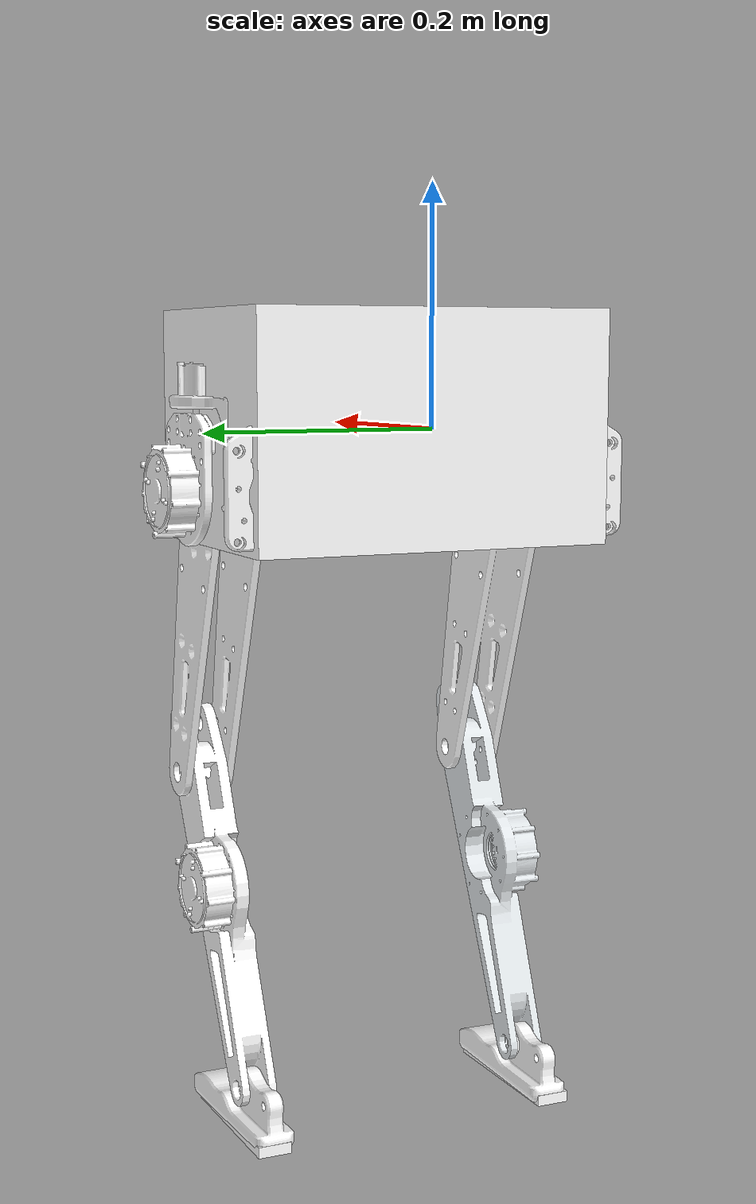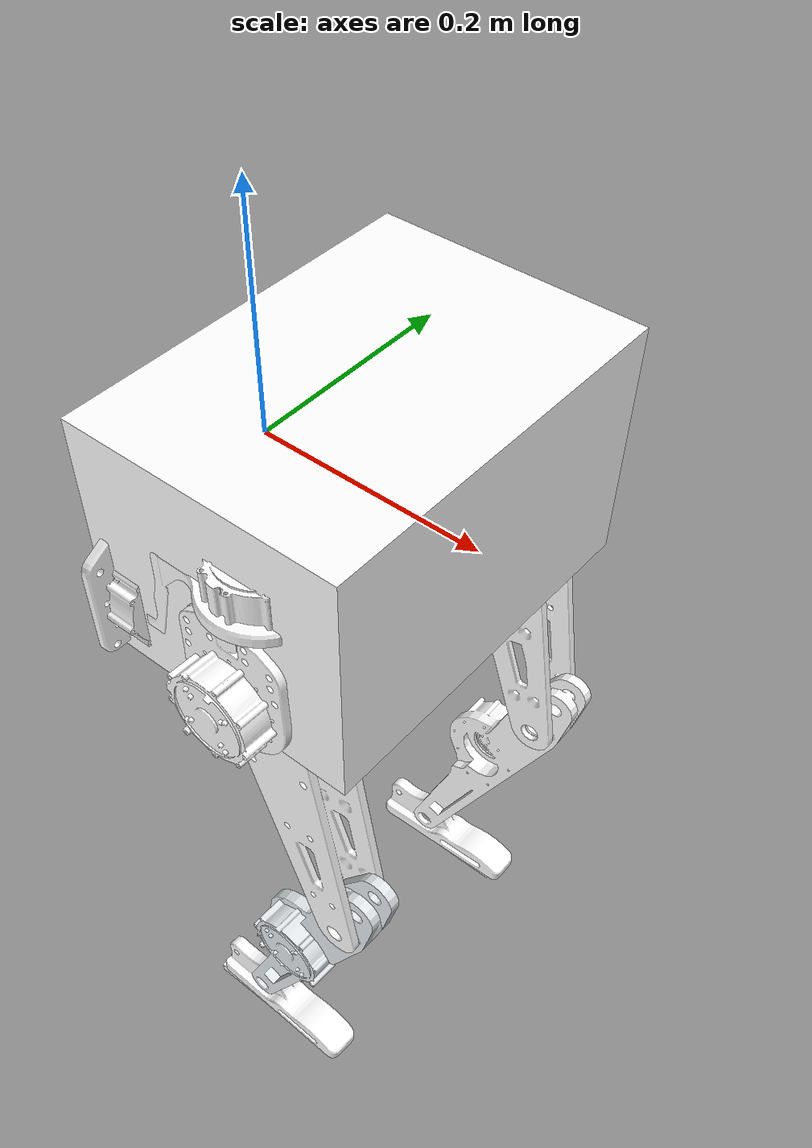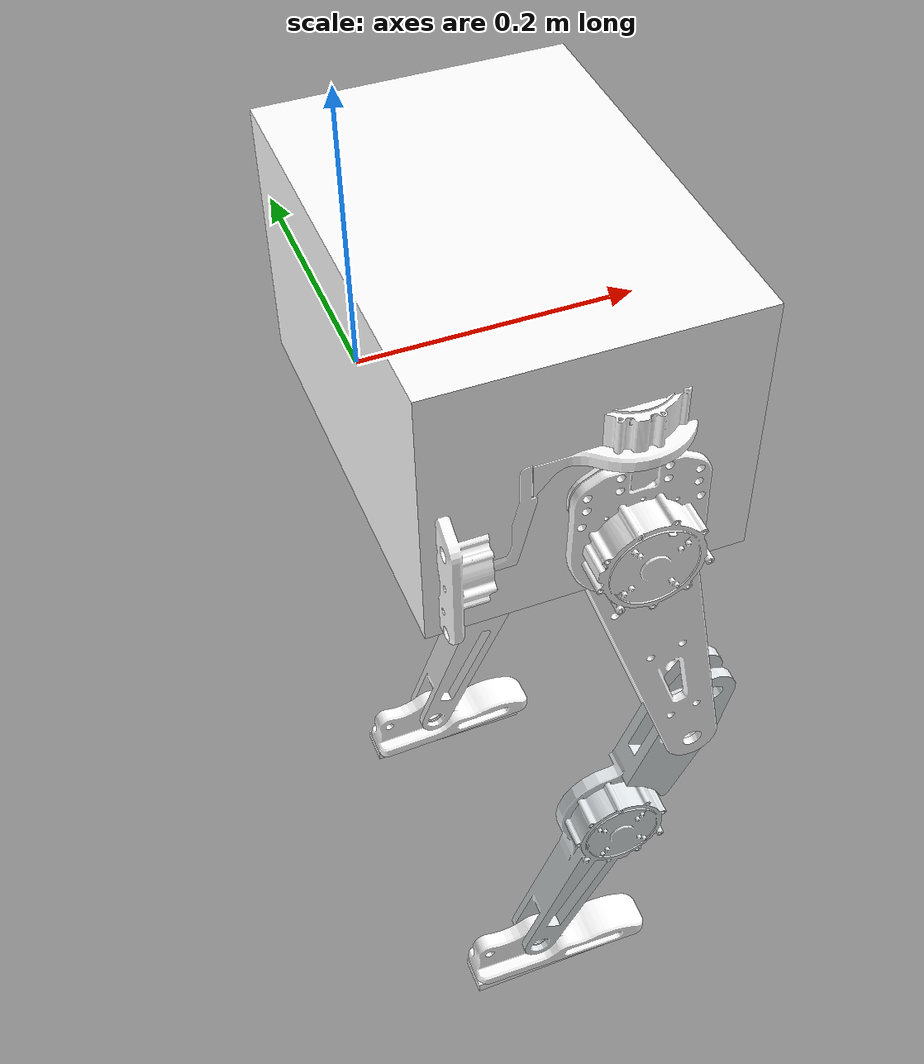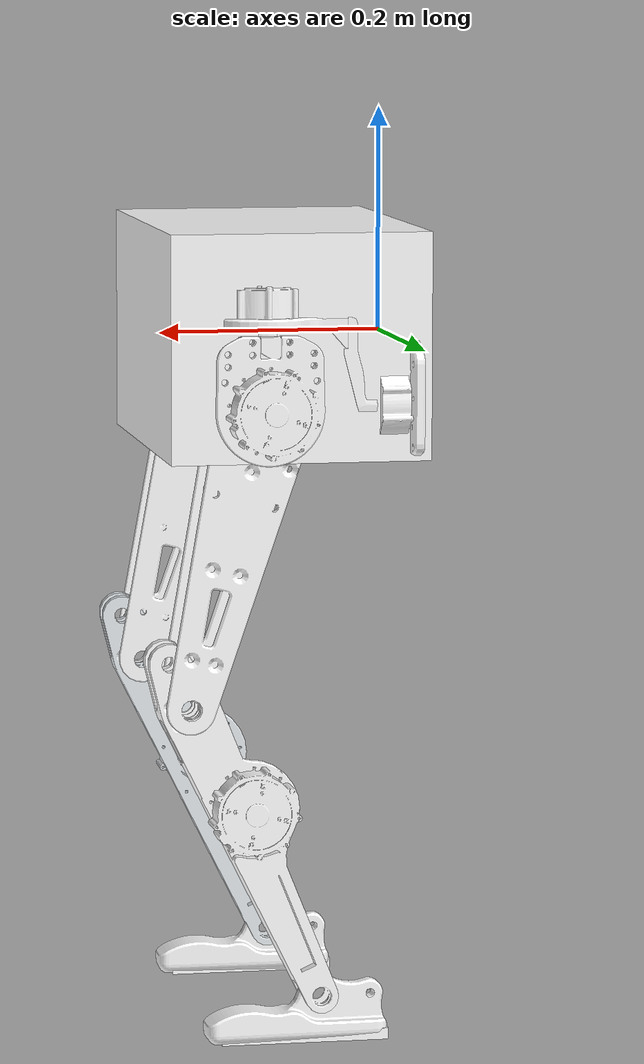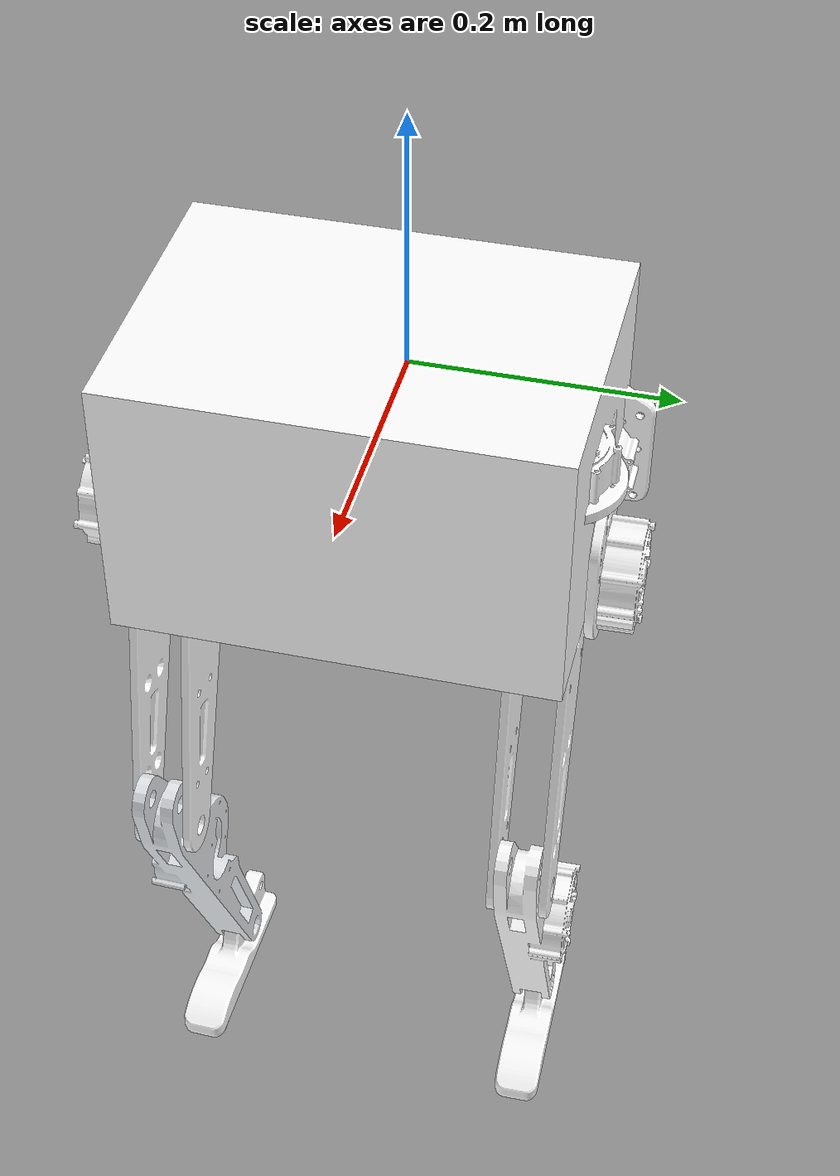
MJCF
<mujoco model="neobot_no_mass_matrix">
    <compiler angle="radian" meshdir="../meshes/" />
    <size njmax="500" nconmax="100" />
    <asset>
        <mesh name="base_link" file="base_link.STL" />
        <mesh name="l_hip_roll_link" file="l_hip_roll_link.STL" />
        <mesh name="l_hip_yaw_link" file="l_hip_yaw_link.STL" />
        <mesh name="l_hip_pitch_link" file="l_hip_pitch_link.STL" />
        <mesh name="l_knee_pitch_link" file="l_knee_pitch_link.STL" />
        <mesh name="l_ankle_pitch_link" file="l_ankle_pitch_link.STL" />
        <mesh name="r_hip_roll_link" file="r_hip_roll_link.STL" />
        <mesh name="r_hip_yaw_link" file="r_hip_yaw_link.STL" />
        <mesh name="r_hip_pitch_link" file="r_hip_pitch_link.STL" />
        <mesh name="r_knee_pitch_link" file="r_knee_pitch_link.STL" />
        <mesh name="r_ankle_pitch_link" file="r_ankle_pitch_link.STL" />
    </asset>
    <worldbody>
        <body name="base_link" pos="0 0 0">
            <inertial pos="0.025332 -0.00013939 -0.019715" quat="0.707502 0.706704 -0.00222976 0.00222538" mass="1.0259" diaginertia="0.0040709 0.0039882 0.0013339" />
            <joint name="floating_base_joint" type="free" />
            <geom type="mesh" contype="0" conaffinity="0" group="1" rgba="1 1 1 1" mesh="base_link" />
            <geom size="0.115 0.16 0.1" pos="0.1 0 0" type="box" rgba="1 1 1 1" />
            <body name="l_hip_roll_link" pos="0.0059839 0.1348 -0.050437">
                <inertial pos="0.10952 0.00060667 0.077433" quat="-0.0115147 0.670287 0.0142684 0.741876" mass="0.43907" diaginertia="0.000343379 0.000248039 0.000203652" />
                <joint name="l_hip_roll_joint" pos="0 0 0" axis="1 0 0" limited="true" range="-0.35 0.7" />
                <geom type="mesh" contype="0" conaffinity="0" group="1" rgba="1 1 1 1" mesh="l_hip_roll_link" />
                <body name="l_hip_yaw_link" pos="0.12444 0.0004858 0.1045">
                    <inertial pos="-0.0011389 -9.0175e-05 -0.099938" quat="0.648374 0.257786 0.264702 0.66565" mass="0.79496" diaginertia="0.000615735 0.000372636 0.000352699" />
                    <joint name="l_hip_yaw_joint" pos="0 0 0" axis="0 0 1" limited="true" range="-0.35 0.35" />
                    <geom type="mesh" contype="0" conaffinity="0" group="1" rgba="1 1 1 1" mesh="l_hip_yaw_link" />
                    <body name="l_hip_pitch_link" pos="-0.0016555 0.063239 -0.10747">
                        <inertial pos="0.028914 -0.061567 -0.10564" quat="0.69222 -0.0879632 -0.090323 0.710589" mass="0.26986" diaginertia="0.00222876 0.00211513 0.000115979" />
                        <joint name="l_hip_pitch_joint" pos="0 0 0" axis="0.0261699 -0.999658 0" limited="true" range="-0.7 0.7" />
                        <geom type="mesh" contype="0" conaffinity="0" group="1" rgba="1 1 1 1" mesh="l_hip_pitch_link" />
                        <body name="l_knee_pitch_link" pos="0.069483 -0.067847 -0.26198">
                            <inertial pos="-0.05093 0.014286 -0.094778" quat="0.684719 0.145904 0.150684 0.697973" mass="0.61414" diaginertia="0.00302955 0.00288766 0.000221637" />
                            <joint name="l_knee_pitch_joint" pos="0 0 0" axis="0.0261699 -0.999658 0" limited="true" range="-0.7 0.7" />
                            <geom type="mesh" contype="0" conaffinity="0" group="1" rgba="1 1 1 1" mesh="l_knee_pitch_link" />
                            <body name="l_ankle_pitch_link" pos="-0.11851 -0.00066656 -0.26317">
                                <inertial pos="0.0182969 0.00671075 -0.0230131" quat="0.478131 0.504305 0.523859 0.492584" mass="0.150425" diaginertia="0.000329399 0.000320723 3.26761e-05" />
                                <joint name="l_ankle_pitch_joint" pos="0 0 0" axis="-0.0261699 0.999658 0" limited="true" range="-0.35 0.35" />
                                <geom type="mesh" contype="0" conaffinity="0" group="1" rgba="1 1 1 1" mesh="l_ankle_pitch_link" />
                                <geom size="0.075 0.015 0.005" pos="0.015 0.007 -0.035" type="box" rgba="1 1 1 1" />
                            </body>
                        </body>
                    </body>
                </body>
            </body>
            <body name="r_hip_roll_link" pos="0.0020094 -0.13529 -0.050508">
                <inertial pos="0.11124 -0.0002406 0.077505" quat="-0.0056586 0.669678 0.00676839 0.742599" mass="0.43907" diaginertia="0.000343401 0.000245082 0.000206587" />
                <joint name="r_hip_roll_joint" pos="0 0 0" axis="1 0 0" limited="true" range="-0.7 0.35" />
                <geom type="mesh" contype="0" conaffinity="0" group="1" rgba="1 1 1 1" mesh="r_hip_roll_link" />
                <body name="r_hip_yaw_link" pos="0.12641 0 0.10457">
                    <inertial pos="-0.0014454 3.7879e-05 -0.10005" quat="0.65446 0.29108 0.283471 0.637651" mass="0.79496" diaginertia="0.000615733 0.000374569 0.000350767" />
                    <joint name="r_hip_yaw_joint" pos="0 0 0" axis="0 0 1" limited="true" range="-0.35 0.35" />
                    <geom type="mesh" contype="0" conaffinity="0" group="1" rgba="1 1 1 1" mesh="r_hip_yaw_link" />
                    <body name="r_hip_pitch_link" pos="-0.0015203 -0.063243 -0.10796">
                        <inertial pos="0.0296613 0.0615385 -0.105442" quat="0.710258 -0.092814 -0.0904427 0.69191" mass="0.269855" diaginertia="0.0022288 0.00211513 0.000115978" />
                        <joint name="r_hip_pitch_joint" pos="0 0 0" axis="-0.0261699 -0.999658 0" limited="true" range="-0.7 0.7" />
                        <geom type="mesh" contype="0" conaffinity="0" group="1" rgba="1 1 1 1" mesh="r_hip_pitch_link" />
                        <body name="r_knee_pitch_link" pos="0.070563 0.038225 -0.26149">
                            <inertial pos="-0.050275 0.015498 -0.094854" quat="0.697887 0.150559 0.145744 0.684868" mass="0.61414" diaginertia="0.00302955 0.00289049 0.00021883" />
                            <joint name="r_knee_pitch_joint" pos="0 0 0" axis="-0.0261699 -0.999658 0" limited="true" range="-0.7 0.7" />
                            <geom type="mesh" contype="0" conaffinity="0" group="1" rgba="0.89804 0.91765 0.92941 1" mesh="r_knee_pitch_link" />
                            <body name="r_ankle_pitch_link" pos="-0.11773 0.030653 -0.26317">
                                <inertial pos="0.0183208 -0.00579655 -0.0230131" quat="0.490858 0.517842 0.510482 0.479903" mass="0.150425" diaginertia="0.000329399 0.000320723 3.26761e-05" />
                                <joint name="r_ankle_pitch_joint" pos="0 0 0" axis="-0.0261699 -0.999658 0" limited="true" range="-0.35 0.35" />
                                <geom type="mesh" contype="0" conaffinity="0" group="1" rgba="1 1 1 1" mesh="r_ankle_pitch_link" />
                                <geom size="0.075 0.015 0.005" pos="0.015 -0.007 -0.035" type="box" rgba="1 1 1 1" />
                            </body>
                        </body>
                    </body>
                </body>
            </body>
        </body>
    </worldbody>
</mujoco>
